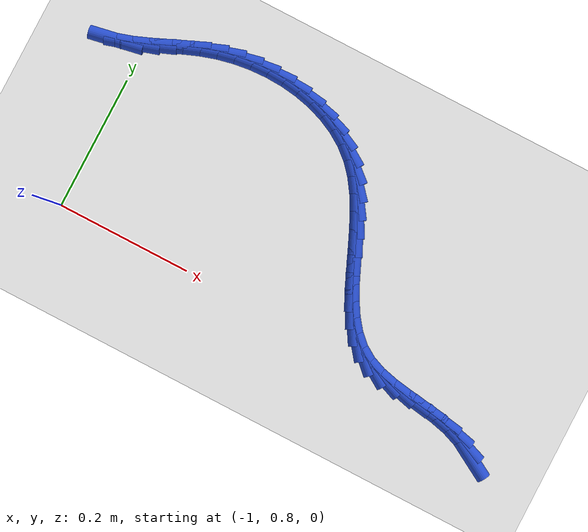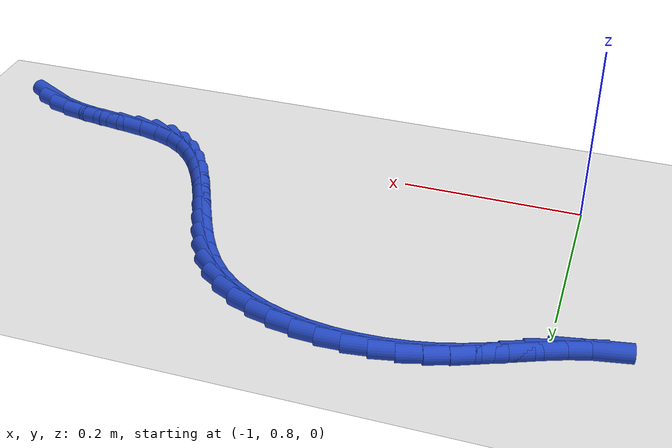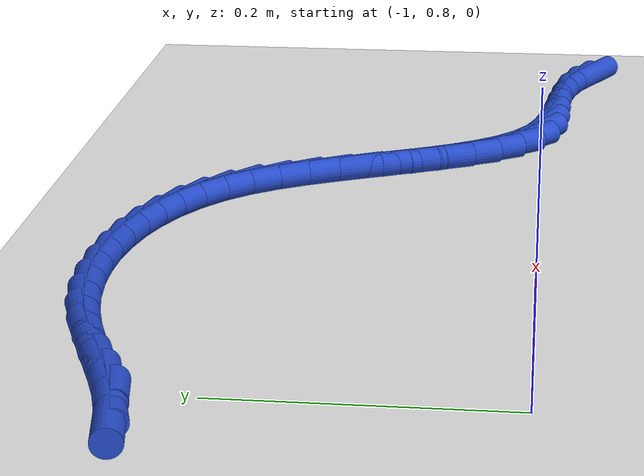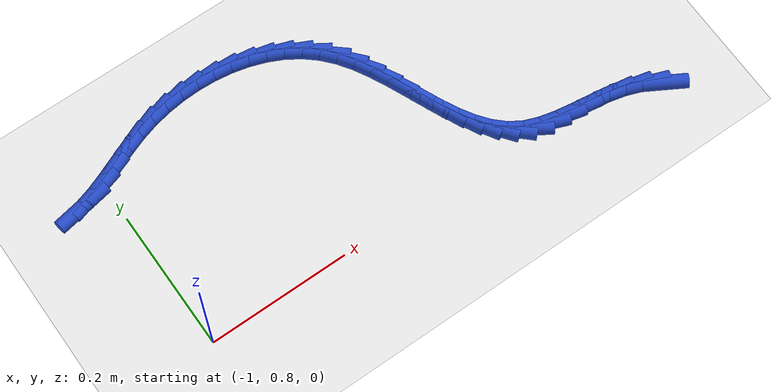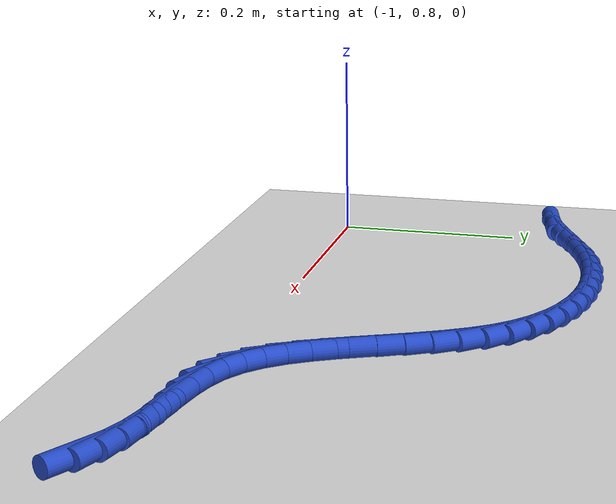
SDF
<sdf version="1.6">
 <world name="default">
  <model name="ground_plane">
   <static>1</static>
   <link name="link">
    <collision name="collision">
     <geometry><plane><normal>0 0 1</normal><size>100 100</size></plane></geometry>
     <surface><friction><ode><mu>100</mu><mu2>50</mu2></ode></friction></surface>
    </collision>
    <visual name="visual">
     <cast_shadows>0</cast_shadows>
     <geometry><plane><normal>0 0 1</normal><size>100 100</size></plane></geometry>
     <material>
      <script><uri>file://media/materials/scripts/gazebo.material</uri><name>Gazebo/WhiteGlow</name></script>
     </material>
    </visual>
   </link>
  </model>
  <model name="line">
   <link name="link_35">
    <pose>-0.33098173032460776 0.7561887102075426 0.01 0 1.57 -0.5209233462219436</pose>
    <collision name="collision">
     <geometry><cylinder><radius>0.01</radius><length>0.08</length></cylinder></geometry>
    </collision>
    <visual name="visual">
     <material>
      <script><name>Gazebo/Blue</name><uri>file://media/materials/scripts/gazebo.material</uri></script>
     </material>
     <geometry><cylinder><radius>0.01</radius><length>0.08</length></cylinder></geometry>
    </visual>
   </link>
   <link name="link_36">
    <pose>-0.35059712694688094 0.7674437996675956 0.01 0 1.57 -0.35553507025811215</pose>
    <collision name="collision">
     <geometry><cylinder><radius>0.01</radius><length>0.08</length></cylinder></geometry>
    </collision>
    <visual name="visual">
     <material>
      <script><name>Gazebo/Blue</name><uri>file://media/materials/scripts/gazebo.material</uri></script>
     </material>
     <geometry><cylinder><radius>0.01</radius><length>0.08</length></cylinder></geometry>
    </visual>
   </link>
   <link name="link_37">
    <pose>-0.3723788104568487 0.7755316405064875 0.01 0 1.57 -0.23048972635414242</pose>
    <collision name="collision">
     <geometry><cylinder><radius>0.01</radius><length>0.08</length></cylinder></geometry>
    </collision>
    <visual name="visual">
     <material>
      <script><name>Gazebo/Blue</name><uri>file://media/materials/scripts/gazebo.material</uri></script>
     </material>
     <geometry><cylinder><radius>0.01</radius><length>0.08</length></cylinder></geometry>
    </visual>
   </link>
   <link name="link_38">
    <pose>-0.3958905824394532 0.7810489128331942 0.01 0 1.57 -0.16097174557308125</pose>
    <collision name="collision">
     <geometry><cylinder><radius>0.01</radius><length>0.08</length></cylinder></geometry>
    </collision>
    <visual name="visual">
     <material>
      <script><name>Gazebo/Blue</name><uri>file://media/materials/scripts/gazebo.material</uri></script>
     </material>
     <geometry><cylinder><radius>0.01</radius><length>0.08</length></cylinder></geometry>
    </visual>
   </link>
   <link name="link_39">
    <pose>-0.42038624782034467 0.7850264374193119 0.01 0 1.57 -0.13946243954434678</pose>
    <collision name="collision">
     <geometry><cylinder><radius>0.01</radius><length>0.08</length></cylinder></geometry>
    </collision>
    <visual name="visual">
     <material>
      <script><name>Gazebo/Blue</name><uri>file://media/materials/scripts/gazebo.material</uri></script>
     </material>
     <geometry><cylinder><radius>0.01</radius><length>0.08</length></cylinder></geometry>
    </visual>
   </link>
   <link name="link_40">
    <pose>-0.4451174593423917 0.7884980491013664 0.01 0 1.57 -0.16366713858289234</pose>
    <collision name="collision">
     <geometry><cylinder><radius>0.01</radius><length>0.08</length></cylinder></geometry>
    </collision>
    <visual name="visual">
     <material>
      <script><name>Gazebo/Blue</name><uri>file://media/materials/scripts/gazebo.material</uri></script>
     </material>
     <geometry><cylinder><radius>0.01</radius><length>0.08</length></cylinder></geometry>
    </visual>
   </link>
   <link name="link_41">
    <pose>-0.4693358697484632 0.7924975827158844 0.01 0 1.57 -0.23766697471989442</pose>
    <collision name="collision">
     <geometry><cylinder><radius>0.01</radius><length>0.08</length></cylinder></geometry>
    </collision>
    <visual name="visual">
     <material>
      <script><name>Gazebo/Blue</name><uri>file://media/materials/scripts/gazebo.material</uri></script>
     </material>
     <geometry><cylinder><radius>0.01</radius><length>0.08</length></cylinder></geometry>
    </visual>
   </link>
   <link name="link_42">
    <pose>-0.49229313178142764 0.7980588730993914 0.01 0 1.57 -0.37132779115681885</pose>
    <collision name="collision">
     <geometry><cylinder><radius>0.01</radius><length>0.08</length></cylinder></geometry>
    </collision>
    <visual name="visual">
     <material>
      <script><name>Gazebo/Blue</name><uri>file://media/materials/scripts/gazebo.material</uri></script>
     </material>
     <geometry><cylinder><radius>0.01</radius><length>0.08</length></cylinder></geometry>
    </visual>
   </link>
   <link name="link_43">
    <pose>-0.5132408981841533 0.8062157550884133 0.01 0 1.57 -0.5666934449704307</pose>
    <collision name="collision">
     <geometry><cylinder><radius>0.01</radius><length>0.08</length></cylinder></geometry>
    </collision>
    <visual name="visual">
     <material>
      <script><name>Gazebo/Blue</name><uri>file://media/materials/scripts/gazebo.material</uri></script>
     </material>
     <geometry><cylinder><radius>0.01</radius><length>0.08</length></cylinder></geometry>
    </visual>
   </link>
   <link name="link_44">
    <pose>-0.5315393916927527 0.817859331315224 0.01 0 1.57 -0.7605467806046483</pose>
    <collision name="collision">
     <geometry><cylinder><radius>0.01</radius><length>0.08</length></cylinder></geometry>
    </collision>
    <visual name="visual">
     <material>
      <script><name>Gazebo/Blue</name><uri>file://media/materials/scripts/gazebo.material</uri></script>
     </material>
     <geometry><cylinder><radius>0.01</radius><length>0.08</length></cylinder></geometry>
    </visual>
   </link>
   <link name="link_45">
    <pose>-0.5473166561955773 0.8328712836480607 0.01 0 1.57 -0.9150220830545429</pose>
    <collision name="collision">
     <geometry><cylinder><radius>0.01</radius><length>0.08</length></cylinder></geometry>
    </collision>
    <visual name="visual">
     <material>
      <script><name>Gazebo/Blue</name><uri>file://media/materials/scripts/gazebo.material</uri></script>
     </material>
     <geometry><cylinder><radius>0.01</radius><length>0.08</length></cylinder></geometry>
    </visual>
   </link>
   <link name="link_46">
    <pose>-0.5610317952950661 0.8506980642814812 0.01 0 1.57 -1.0281246258088235</pose>
    <collision name="collision">
     <geometry><cylinder><radius>0.01</radius><length>0.08</length></cylinder></geometry>
    </collision>
    <visual name="visual">
     <material>
      <script><name>Gazebo/Blue</name><uri>file://media/materials/scripts/gazebo.material</uri></script>
     </material>
     <geometry><cylinder><radius>0.01</radius><length>0.08</length></cylinder></geometry>
    </visual>
   </link>
   <link name="link_47">
    <pose>-0.573145213518439 0.8707844151413385 0.01 0 1.57 -1.1043342231362312</pose>
    <collision name="collision">
     <geometry><cylinder><radius>0.01</radius><length>0.08</length></cylinder></geometry>
    </collision>
    <visual name="visual">
     <material>
      <script><name>Gazebo/Blue</name><uri>file://media/materials/scripts/gazebo.material</uri></script>
     </material>
     <geometry><cylinder><radius>0.01</radius><length>0.08</length></cylinder></geometry>
    </visual>
   </link>
   <link name="link_48">
    <pose>-0.5841173153929161 0.8925750781534855 0.01 0 1.57 -1.1490915395457144</pose>
    <collision name="collision">
     <geometry><cylinder><radius>0.01</radius><length>0.08</length></cylinder></geometry>
    </collision>
    <visual name="visual">
     <material>
      <script><name>Gazebo/Blue</name><uri>file://media/materials/scripts/gazebo.material</uri></script>
     </material>
     <geometry><cylinder><radius>0.01</radius><length>0.08</length></cylinder></geometry>
    </visual>
   </link>
   <link name="link_49">
    <pose>-0.5944085054457175 0.9155147952437757 0.01 0 1.57 -1.1664470477522946</pose>
    <collision name="collision">
     <geometry><cylinder><radius>0.01</radius><length>0.08</length></cylinder></geometry>
    </collision>
    <visual name="visual">
     <material>
      <script><name>Gazebo/Blue</name><uri>file://media/materials/scripts/gazebo.material</uri></script>
     </material>
     <geometry><cylinder><radius>0.01</radius><length>0.08</length></cylinder></geometry>
    </visual>
   </link>
   <link name="link_50">
    <pose>-0.6044791882040634 0.939048308338062 0.01 0 1.57 -1.1584639515517923</pose>
    <collision name="collision">
     <geometry><cylinder><radius>0.01</radius><length>0.08</length></cylinder></geometry>
    </collision>
    <visual name="visual">
     <material>
      <script><name>Gazebo/Blue</name><uri>file://media/materials/scripts/gazebo.material</uri></script>
     </material>
     <geometry><cylinder><radius>0.01</radius><length>0.08</length></cylinder></geometry>
    </visual>
   </link>
   <link name="link_51">
    <pose>-0.6147897681951736 0.9626203593621977 0.01 0 1.57 -1.1252409215385817</pose>
    <collision name="collision">
     <geometry><cylinder><radius>0.01</radius><length>0.08</length></cylinder></geometry>
    </collision>
    <visual name="visual">
     <material>
      <script><name>Gazebo/Blue</name><uri>file://media/materials/scripts/gazebo.material</uri></script>
     </material>
     <geometry><cylinder><radius>0.01</radius><length>0.08</length></cylinder></geometry>
    </visual>
   </link>
   <link name="link_52">
    <pose>-0.6258006499462685 0.9856756902420363 0.01 0 1.57 -1.0651375557721678</pose>
    <collision name="collision">
     <geometry><cylinder><radius>0.01</radius><length>0.08</length></cylinder></geometry>
    </collision>
    <visual name="visual">
     <material>
      <script><name>Gazebo/Blue</name><uri>file://media/materials/scripts/gazebo.material</uri></script>
     </material>
     <geometry><cylinder><radius>0.01</radius><length>0.08</length></cylinder></geometry>
    </visual>
   </link>
   <link name="link_53">
    <pose>-0.6379722379845679 1.007659042903431 0.01 0 1.57 -0.9752830277168776</pose>
    <collision name="collision">
     <geometry><cylinder><radius>0.01</radius><length>0.08</length></cylinder></geometry>
    </collision>
    <visual name="visual">
     <material>
      <script><name>Gazebo/Blue</name><uri>file://media/materials/scripts/gazebo.material</uri></script>
     </material>
     <geometry><cylinder><radius>0.01</radius><length>0.08</length></cylinder></geometry>
    </visual>
   </link>
   <link name="link_54">
    <pose>-0.651764936837292 1.0280151592722342 0.01 0 1.57 -0.8528761698114475</pose>
    <collision name="collision">
     <geometry><cylinder><radius>0.01</radius><length>0.08</length></cylinder></geometry>
    </collision>
    <visual name="visual">
     <material>
      <script><name>Gazebo/Blue</name><uri>file://media/materials/scripts/gazebo.material</uri></script>
     </material>
     <geometry><cylinder><radius>0.01</radius><length>0.08</length></cylinder></geometry>
    </visual>
   </link>
   <link name="link_55">
    <pose>-0.6676382767135091 1.0461894593850107 0.01 0 1.57 -0.7089371878396424</pose>
    <collision name="collision">
     <geometry><cylinder><radius>0.01</radius><length>0.08</length></cylinder></geometry>
    </collision>
    <visual name="visual">
     <material>
      <script><name>Gazebo/Blue</name><uri>file://media/materials/scripts/gazebo.material</uri></script>
     </material>
     <geometry><cylinder><radius>0.01</radius><length>0.08</length></cylinder></geometry>
    </visual>
   </link>
   <link name="link_56">
    <pose>-0.6858344083324771 1.061795960213074 0.01 0 1.57 -0.5719670868590997</pose>
    <collision name="collision">
     <geometry><cylinder><radius>0.01</radius><length>0.08</length></cylinder></geometry>
    </collision>
    <visual name="visual">
     <material>
      <script><name>Gazebo/Blue</name><uri>file://media/materials/scripts/gazebo.material</uri></script>
     </material>
     <geometry><cylinder><radius>0.01</radius><length>0.08</length></cylinder></geometry>
    </visual>
   </link>
   <link name="link_57">
    <pose>-0.7060937215211623 1.0748378384800723 0.01 0 1.57 -0.4467381063991091</pose>
    <collision name="collision">
     <geometry><cylinder><radius>0.01</radius><length>0.08</length></cylinder></geometry>
    </collision>
    <visual name="visual">
     <material>
      <script><name>Gazebo/Blue</name><uri>file://media/materials/scripts/gazebo.material</uri></script>
     </material>
     <geometry><cylinder><radius>0.01</radius><length>0.08</length></cylinder></geometry>
    </visual>
   </link>
   <link name="link_58">
    <pose>-0.7280860389759922 1.0853730019328667 0.01 0 1.57 -0.33278760443191946</pose>
    <collision name="collision">
     <geometry><cylinder><radius>0.01</radius><length>0.08</length></cylinder></geometry>
    </collision>
    <visual name="visual">
     <material>
      <script><name>Gazebo/Blue</name><uri>file://media/materials/scripts/gazebo.material</uri></script>
     </material>
     <geometry><cylinder><radius>0.01</radius><length>0.08</length></cylinder></geometry>
    </visual>
   </link>
   <link name="link_59">
    <pose>-0.751481183393395 1.0934593583183192 0.01 0 1.57 -0.22870105658260492</pose>
    <collision name="collision">
     <geometry><cylinder><radius>0.01</radius><length>0.08</length></cylinder></geometry>
    </collision>
    <visual name="visual">
     <material>
      <script><name>Gazebo/Blue</name><uri>file://media/materials/scripts/gazebo.material</uri></script>
     </material>
     <geometry><cylinder><radius>0.01</radius><length>0.08</length></cylinder></geometry>
    </visual>
   </link>
   <link name="link_60">
    <pose>-0.7759489774697987 1.0991548153832906 0.01 0 1.57 -0.1325942717282767</pose>
    <collision name="collision">
     <geometry><cylinder><radius>0.01</radius><length>0.08</length></cylinder></geometry>
    </collision>
    <visual name="visual">
     <material>
      <script><name>Gazebo/Blue</name><uri>file://media/materials/scripts/gazebo.material</uri></script>
     </material>
     <geometry><cylinder><radius>0.01</radius><length>0.08</length></cylinder></geometry>
    </visual>
   </link>
   <link name="link_61">
    <pose>-0.801159243901631 1.102517280874642 0.01 0 1.57 -0.04241299491118357</pose>
    <collision name="collision">
     <geometry><cylinder><radius>0.01</radius><length>0.08</length></cylinder></geometry>
    </collision>
    <visual name="visual">
     <material>
      <script><name>Gazebo/Blue</name><uri>file://media/materials/scripts/gazebo.material</uri></script>
     </material>
     <geometry><cylinder><radius>0.01</radius><length>0.08</length></cylinder></geometry>
    </visual>
   </link>
   <link name="link_62">
    <pose>-0.8267818053853201 1.1036046625392355 0.01 0 1.57 0.0439245988772277</pose>
    <collision name="collision">
     <geometry><cylinder><radius>0.01</radius><length>0.08</length></cylinder></geometry>
    </collision>
    <visual name="visual">
     <material>
      <script><name>Gazebo/Blue</name><uri>file://media/materials/scripts/gazebo.material</uri></script>
     </material>
     <geometry><cylinder><radius>0.01</radius><length>0.08</length></cylinder></geometry>
    </visual>
   </link>
   <link name="link_63">
    <pose>-0.8524864846172938 1.1024748681239318 0.01 0 1.57 0.12849082655115898</pose>
    <collision name="collision">
     <geometry><cylinder><radius>0.01</radius><length>0.08</length></cylinder></geometry>
    </collision>
    <visual name="visual">
     <material>
      <script><name>Gazebo/Blue</name><uri>file://media/materials/scripts/gazebo.material</uri></script>
     </material>
     <geometry><cylinder><radius>0.01</radius><length>0.08</length></cylinder></geometry>
    </visual>
   </link>
   <link name="link_64">
    <pose>-0.8779431042939801 1.099185805375592 0.01 0 1.57 0.21337275242029086</pose>
    <collision name="collision">
     <geometry><cylinder><radius>0.01</radius><length>0.08</length></cylinder></geometry>
    </collision>
    <visual name="visual">
     <material>
      <script><name>Gazebo/Blue</name><uri>file://media/materials/scripts/gazebo.material</uri></script>
     </material>
     <geometry><cylinder><radius>0.01</radius><length>0.08</length></cylinder></geometry>
    </visual>
   </link>
   <link name="link_65">
    <pose>-0.9028214871118068 1.093795382041078 0.01 0 1.57 0.2996032688060958</pose>
    <collision name="collision">
     <geometry><cylinder><radius>0.01</radius><length>0.08</length></cylinder></geometry>
    </collision>
    <visual name="visual">
     <material>
      <script><name>Gazebo/Blue</name><uri>file://media/materials/scripts/gazebo.material</uri></script>
     </material>
     <geometry><cylinder><radius>0.01</radius><length>0.08</length></cylinder></geometry>
    </visual>
   </link>
   <link name="link_66">
    <pose>-0.9268093896995869 1.0863854803362365 0.01 0 1.57 0.369549002037685</pose>
    <collision name="collision">
     <geometry><cylinder><radius>0.01</radius><length>0.08</length></cylinder></geometry>
    </collision>
    <visual name="visual">
     <material>
      <script><name>Gazebo/Blue</name><uri>file://media/materials/scripts/gazebo.material</uri></script>
     </material>
     <geometry><cylinder><radius>0.01</radius><length>0.08</length></cylinder></geometry>
    </visual>
   </link>
   <link name="link_67">
    <pose>-0.949897199752444 1.077442546236705 0.01 0 1.57 0.4063975860002821</pose>
    <collision name="collision">
     <geometry><cylinder><radius>0.01</radius><length>0.08</length></cylinder></geometry>
    </collision>
    <visual name="visual">
     <material>
      <script><name>Gazebo/Blue</name><uri>file://media/materials/scripts/gazebo.material</uri></script>
     </material>
     <geometry><cylinder><radius>0.01</radius><length>0.08</length></cylinder></geometry>
    </visual>
   </link>
   <link name="link_68">
    <pose>-0.9723271547373453 1.0677897039443227 0.01 0 1.57 0.40839170961009696</pose>
    <collision name="collision">
     <geometry><cylinder><radius>0.01</radius><length>0.08</length></cylinder></geometry>
    </collision>
    <visual name="visual">
     <material>
      <script><name>Gazebo/Blue</name><uri>file://media/materials/scripts/gazebo.material</uri></script>
     </material>
     <geometry><cylinder><radius>0.01</radius><length>0.08</length></cylinder></geometry>
    </visual>
   </link>
   <link name="link_69">
    <pose>-0.9943491622572667 1.0582603312647634 0.01 0 1.57 0.37366419731571077</pose>
    <collision name="collision">
     <geometry><cylinder><radius>0.01</radius><length>0.08</length></cylinder></geometry>
    </collision>
    <visual name="visual">
     <material>
      <script><name>Gazebo/Blue</name><uri>file://media/materials/scripts/gazebo.material</uri></script>
     </material>
     <geometry><cylinder><radius>0.01</radius><length>0.08</length></cylinder></geometry>
    </visual>
   </link>
   <link name="link_70">
    <pose>-1.0162131299151849 1.0496878060037012 0.01 0 1.57 0.29960772419895326</pose>
    <collision name="collision">
     <geometry><cylinder><radius>0.01</radius><length>0.08</length></cylinder></geometry>
    </collision>
    <visual name="visual">
     <material>
      <script><name>Gazebo/Blue</name><uri>file://media/materials/scripts/gazebo.material</uri></script>
     </material>
     <geometry><cylinder><radius>0.01</radius><length>0.08</length></cylinder></geometry>
    </visual>
   </link>
   <link name="link_71">
    <pose>-1.038168965314077 1.0429055059668109 0.01 0 1.57 0.18490531621057138</pose>
    <collision name="collision">
     <geometry><cylinder><radius>0.01</radius><length>0.08</length></cylinder></geometry>
    </collision>
    <visual name="visual">
     <material>
      <script><name>Gazebo/Blue</name><uri>file://media/materials/scripts/gazebo.material</uri></script>
     </material>
     <geometry><cylinder><radius>0.01</radius><length>0.08</length></cylinder></geometry>
    </visual>
   </link>
  </model>
 </world>
</sdf>
